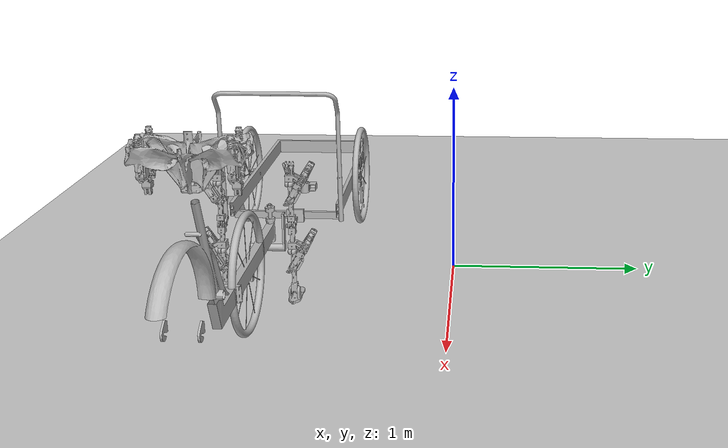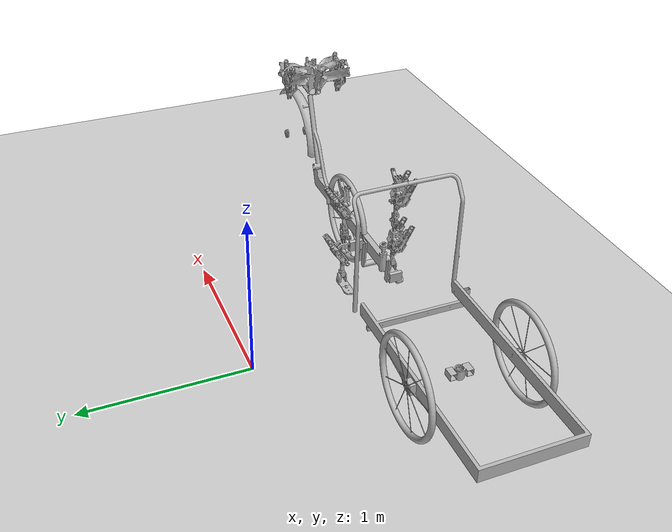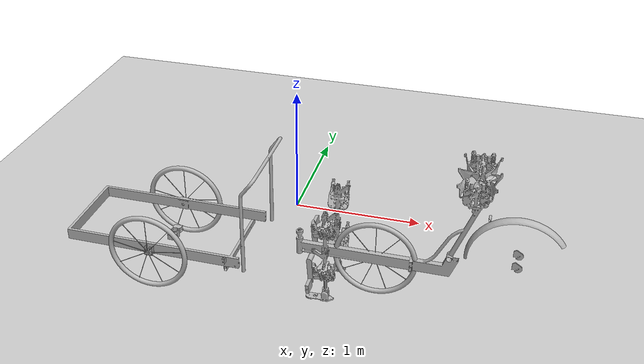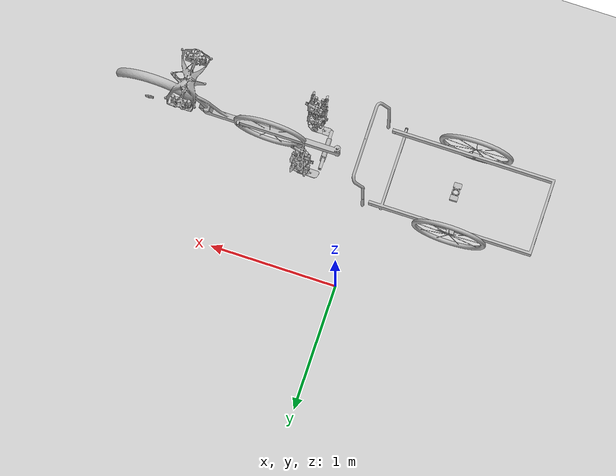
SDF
<sdf version="1.6">
 <world name="default">
  <light name="sun" type="directional">
   <pose>0 0 10 0 -0 0</pose>
   <diffuse>0.8 0.8 0.8 1</diffuse>
   <specular>0.2 0.2 0.2 1</specular>
   <attenuation>
    <range>1000</range>
    <constant>0.9</constant>
    <linear>0.01</linear>
    <quadratic>0.001</quadratic>
   </attenuation>
   <direction>-0.5 0.1 -0.9</direction>
  </light>
  <model name="ground_plane">
   <static>1</static>
   <link name="link">
    <collision name="collision">
     <geometry><plane><normal>0 0 1</normal><size>100 100</size></plane></geometry>
     <surface>
      <contact><collide_bitmask>65535</collide_bitmask></contact>
      <friction><ode><mu>100</mu><mu2>50</mu2></ode></friction>
     </surface>
    </collision>
    <visual name="visual">
     <cast_shadows>0</cast_shadows>
     <geometry><plane><normal>0 0 1</normal><size>100 100</size></plane></geometry>
     <material>
      <script><uri>file://media/materials/scripts/gazebo.material</uri><name>Gazebo/Grey</name></script>
     </material>
    </visual>
   </link>
  </model>
  <gravity>0 0 -9.81</gravity>
  <magnetic_field>6e-06 2.3e-05 -4.2e-05</magnetic_field>
  <atmosphere type="adiabatic"/>
  <physics name="default_physics" default="0" type="ode">
   <max_step_size>0.001</max_step_size>
   <real_time_factor>1</real_time_factor>
   <real_time_update_rate>1000</real_time_update_rate>
  </physics>
  <scene><ambient>0.4 0.4 0.4 1</ambient><background>0.7 0.7 0.7 1</background><shadows>1</shadows></scene>
  <audio><device>default</device></audio>
  <spherical_coordinates>
   <surface_model>EARTH_WGS84</surface_model>
   <latitude_deg>0</latitude_deg>
   <longitude_deg>0</longitude_deg>
   <elevation>0</elevation>
   <heading_deg>0</heading_deg>
  </spherical_coordinates>
  <model name="rikshaw">
   <link name="bike">
    <inertial>
     <mass>21.8195</mass>
     <inertia>
      <ixx>5.88648</ixx>
      <ixy>0.052466</ixy>
      <ixz>0.146054</ixz>
      <iyy>9.14545</iyy>
      <iyz>-2.30931</iyz>
      <izz>3.8627</izz>
     </inertia>
    </inertial>
    <collision name="bike_collision">
     <geometry>
      <mesh><uri>model://rikshaw/meshes/collisions/bike.stl</uri><scale>0.001 0.001 0.001</scale></mesh>
     </geometry>
    </collision>
    <visual name="bike_visual">
     <geometry>
      <mesh><uri>model://rikshaw/meshes/visuals/bike.stl</uri><scale>0.001 0.001 0.001</scale></mesh>
     </geometry>
    </visual>
   </link>
   <link name="front_part">
    <pose>-0.71639 0.010389 0.216438 0 -0 0</pose>
    <inertial>
     <mass>16.8107</mass>
     <inertia>
      <ixx>3.20923</ixx>
      <ixy>0.181136</ixy>
      <ixz>-0.00672308</ixz>
      <iyy>14.663</iyy>
      <iyz>1.24197</iyz>
      <izz>13.9129</izz>
     </inertia>
    </inertial>
    <collision name="front_part_collision">
     <geometry>
      <mesh><uri>model://rikshaw/meshes/collisions/front_part.stl</uri><scale>0.001 0.001 0.001</scale></mesh>
     </geometry>
    </collision>
    <visual name="front_part_visual">
     <geometry>
      <mesh><uri>model://rikshaw/meshes/visuals/front_part.stl</uri><scale>0.001 0.001 0.001</scale></mesh>
     </geometry>
    </visual>
   </link>
   <link name="left_wheel">
    <pose>-0.998426 -0.35 0.045667 0 -0 0</pose>
    <inertial>
     <mass>13.3402</mass>
     <inertia>
      <ixx>2.17117</ixx>
      <ixy>-4.66171</ixy>
      <ixz>0.213222</ixz>
      <iyy>14.3423</iyy>
      <iyz>0.608246</iyz>
      <izz>15.4415</izz>
     </inertia>
    </inertial>
    <collision name="left_wheel_collision">
     <geometry>
      <mesh><uri>model://rikshaw/meshes/collisions/left_wheel.stl</uri><scale>0.001 0.001 0.001</scale></mesh>
     </geometry>
    </collision>
    <visual name="left_wheel_visual">
     <geometry>
      <mesh><uri>model://rikshaw/meshes/visuals/left_wheel.stl</uri><scale>0.001 0.001 0.001</scale></mesh>
     </geometry>
    </visual>
   </link>
   <link name="right_wheel">
    <pose>-0.998426 0.342 0.045667 0 -0 0</pose>
    <inertial>
     <mass>13.3402</mass>
     <inertia>
      <ixx>2.09732</ixx>
      <ixy>4.55516</ixy>
      <ixz>-0.208348</ixz>
      <iyy>14.3423</iyy>
      <iyz>0.608246</iyz>
      <izz>15.3677</izz>
     </inertia>
    </inertial>
    <collision name="right_wheel_collision">
     <geometry>
      <mesh><uri>model://rikshaw/meshes/collisions/right_wheel.stl</uri><scale>0.001 0.001 0.001</scale></mesh>
     </geometry>
    </collision>
    <visual name="right_wheel_visual">
     <geometry>
      <mesh><uri>model://rikshaw/meshes/visuals/right_wheel.stl</uri><scale>0.001 0.001 0.001</scale></mesh>
     </geometry>
    </visual>
   </link>
   <link name="pedal_right">
    <pose>0.077867 0.147989 0.171875 0 -0 0</pose>
    <inertial>
     <mass>0.946003</mass>
     <inertia>
      <ixx>0.049585</ixx>
      <ixy>-0.0109012</ixy>
      <ixz>-0.0240622</ixz>
      <iyy>0.0340966</iyy>
      <iyz>-0.0126331</iyz>
      <izz>0.0270606</izz>
     </inertia>
    </inertial>
    <collision name="pedal_right_collision">
     <geometry>
      <mesh><uri>model://rikshaw/meshes/collisions/pedal_right.stl</uri><scale>0.001 0.001 0.001</scale></mesh>
     </geometry>
    </collision>
    <visual name="pedal_right_visual">
     <geometry>
      <mesh><uri>model://rikshaw/meshes/visuals/pedal_right.stl</uri><scale>0.001 0.001 0.001</scale></mesh>
     </geometry>
    </visual>
   </link>
   <link name="kurbel">
    <pose>0.092229 0.000132 0.004277 0 -0 0</pose>
    <inertial>
     <mass>2.78327</mass>
     <inertia>
      <ixx>0.0332153</ixx>
      <ixy>0.00102181</ixy>
      <ixz>-0.0129372</ixz>
      <iyy>0.0415869</iyy>
      <iyz>0.000301436</iyz>
      <izz>0.0397311</izz>
     </inertia>
    </inertial>
    <collision name="kurbel_collision">
     <geometry>
      <mesh><uri>model://rikshaw/meshes/collisions/kurbel.stl</uri><scale>0.001 0.001 0.001</scale></mesh>
     </geometry>
    </collision>
    <visual name="kurbel_visual">
     <geometry>
      <mesh><uri>model://rikshaw/meshes/visuals/kurbel.stl</uri><scale>0.001 0.001 0.001</scale></mesh>
     </geometry>
    </visual>
   </link>
   <link name="pedal_left">
    <pose>0.107381 -0.149245 -0.165378 0 -0 0</pose>
    <inertial>
     <mass>0.946003</mass>
     <inertia>
      <ixx>0.0478651</ixx>
      <ixy>0.0151607</ixy>
      <ixz>-0.023349</ixz>
      <iyy>0.037196</iyy>
      <iyz>0.0168274</iyz>
      <izz>0.0325859</izz>
     </inertia>
    </inertial>
    <collision name="pedal_left_collision">
     <geometry>
      <mesh><uri>model://rikshaw/meshes/collisions/pedal_left.stl</uri><scale>0.001 0.001 0.001</scale></mesh>
     </geometry>
    </collision>
    <visual name="pedal_left_visual">
     <geometry>
      <mesh><uri>model://rikshaw/meshes/visuals/pedal_left.stl</uri><scale>0.001 0.001 0.001</scale></mesh>
     </geometry>
    </visual>
   </link>
   <link name="foot_left">
    <pose>0.175834 -0.188522 -0.206484 0 -0 0</pose>
    <inertial>
     <mass>0.729387</mass>
     <inertia>
      <ixx>0.0540703</ixx>
      <ixy>0.0325151</ixy>
      <ixz>-0.0267603</ixz>
      <iyy>0.0691055</iyy>
      <iyz>0.033572</iyz>
      <izz>0.0673689</izz>
     </inertia>
    </inertial>
    <collision name="foot_left_collision">
     <geometry>
      <mesh><uri>model://rikshaw/meshes/collisions/foot_left.stl</uri><scale>0.001 0.001 0.001</scale></mesh>
     </geometry>
    </collision>
    <visual name="foot_left_visual">
     <geometry>
      <mesh><uri>model://rikshaw/meshes/visuals/foot_left.stl</uri><scale>0.001 0.001 0.001</scale></mesh>
     </geometry>
    </visual>
   </link>
   <link name="foot_left_tip">
    <pose>0.135237 -0.187356 -0.212157 0 -0 0</pose>
    <inertial>
     <mass>0.27794</mass>
     <inertia>
      <ixx>0.0223508</ixx>
      <ixy>0.00705069</ixy>
      <ixz>-0.0110471</ixz>
      <iyy>0.0177083</iyy>
      <iyz>0.00796501</iyz>
      <izz>0.0150315</izz>
     </inertia>
    </inertial>
    <collision name="foot_left_tip_collision">
     <geometry>
      <mesh><uri>model://rikshaw/meshes/collisions/foot_left_tip.stl</uri><scale>0.001 0.001 0.001</scale></mesh>
     </geometry>
    </collision>
    <visual name="foot_left_tip_visual">
     <geometry>
      <mesh><uri>model://rikshaw/meshes/visuals/foot_left_tip.stl</uri><scale>0.001 0.001 0.001</scale></mesh>
     </geometry>
    </visual>
   </link>
   <link name="foot_right">
    <pose>0.177557 0.159628 -0.20488 0 -0 0</pose>
    <inertial>
     <mass>0.729389</mass>
     <inertia>
      <ixx>0.0466286</ixx>
      <ixy>-0.0277371</ixy>
      <ixz>0.0225894</ixz>
      <iyy>0.0699977</iyy>
      <iyz>0.0339399</iyz>
      <izz>0.0608029</izz>
     </inertia>
    </inertial>
    <collision name="foot_right_collision">
     <geometry>
      <mesh><uri>model://rikshaw/meshes/collisions/foot_right.stl</uri><scale>0.001 0.001 0.001</scale></mesh>
     </geometry>
    </collision>
    <visual name="foot_right_visual">
     <geometry>
      <mesh><uri>model://rikshaw/meshes/visuals/foot_right.stl</uri><scale>0.001 0.001 0.001</scale></mesh>
     </geometry>
    </visual>
   </link>
   <link name="foot_right_tip">
    <pose>0.137476 0.157961 -0.21111 0 -0 0</pose>
    <inertial>
     <mass>0.277951</mass>
     <inertia>
      <ixx>0.019407</ixx>
      <ixy>-0.00604428</ixy>
      <ixz>0.00926828</ixz>
      <iyy>0.0177555</iyy>
      <iyz>0.00805844</iyz>
      <izz>0.0123806</izz>
     </inertia>
    </inertial>
    <collision name="foot_right_tip_collision">
     <geometry>
      <mesh><uri>model://rikshaw/meshes/collisions/foot_right_tip.stl</uri><scale>0.001 0.001 0.001</scale></mesh>
     </geometry>
    </collision>
    <visual name="foot_right_tip_visual">
     <geometry>
      <mesh><uri>model://rikshaw/meshes/visuals/foot_right_tip.stl</uri><scale>0.001 0.001 0.001</scale></mesh>
     </geometry>
    </visual>
   </link>
   <link name="thigh_right">
    <pose>0.22881 0.183836 0.377897 0 -0 0</pose>
    <inertial>
     <mass>5.56353</mass>
     <inertia>
      <ixx>1.01078</ixx>
      <ixy>-0.233948</ixy>
      <ixz>-0.389556</ixz>
      <iyy>1.11693</iyy>
      <iyz>-0.481833</iyz>
      <izz>0.491424</izz>
     </inertia>
    </inertial>
    <collision name="thigh_right_collision">
     <geometry>
      <mesh><uri>model://rikshaw/meshes/collisions/thigh_right.stl</uri><scale>0.001 0.001 0.001</scale></mesh>
     </geometry>
    </collision>
    <visual name="thigh_right_visual">
     <geometry>
      <mesh><uri>model://rikshaw/meshes/visuals/thigh_right.stl</uri><scale>0.001 0.001 0.001</scale></mesh>
     </geometry>
    </visual>
   </link>
   <link name="thigh_left">
    <pose>0.229281 -0.212628 0.377907 0 -0 0</pose>
    <inertial>
     <mass>5.56359</mass>
     <inertia>
      <ixx>1.07435</ixx>
      <ixy>0.270612</ixy>
      <ixz>0.450093</ixz>
      <iyy>1.11818</iyy>
      <iyz>-0.483107</iyz>
      <izz>0.556129</izz>
     </inertia>
    </inertial>
    <collision name="thigh_left_collision">
     <geometry>
      <mesh><uri>model://rikshaw/meshes/collisions/thigh_left.stl</uri><scale>0.001 0.001 0.001</scale></mesh>
     </geometry>
    </collision>
    <visual name="thigh_left_visual">
     <geometry>
      <mesh><uri>model://rikshaw/meshes/visuals/thigh_left.stl</uri><scale>0.001 0.001 0.001</scale></mesh>
     </geometry>
    </visual>
   </link>
   <link name="leg_right">
    <pose>0.232912 0.183265 0.029973 0 -0 0</pose>
    <inertial>
     <mass>5.74152</mass>
     <inertia>
      <ixx>0.23782</ixx>
      <ixy>-0.245518</ixy>
      <ixz>-0.0349696</ixz>
      <iyy>0.359399</iyy>
      <iyz>-0.0375907</iyz>
      <izz>0.516755</izz>
     </inertia>
    </inertial>
    <collision name="leg_right_collision">
     <geometry>
      <mesh><uri>model://rikshaw/meshes/collisions/leg_right.stl</uri><scale>0.001 0.001 0.001</scale></mesh>
     </geometry>
    </collision>
    <visual name="leg_right_visual">
     <geometry>
      <mesh><uri>model://rikshaw/meshes/visuals/leg_right.stl</uri><scale>0.001 0.001 0.001</scale></mesh>
     </geometry>
    </visual>
   </link>
   <link name="leg_left">
    <pose>0.232044 -0.211691 0.030085 0 -0 0</pose>
    <inertial>
     <mass>5.74262</mass>
     <inertia>
      <ixx>0.302437</ixx>
      <ixy>0.281999</ixy>
      <ixz>0.0400119</ixz>
      <iyy>0.357203</iyy>
      <iyz>-0.0381305</iyz>
      <izz>0.578943</izz>
     </inertia>
    </inertial>
    <collision name="leg_left_collision">
     <geometry>
      <mesh><uri>model://rikshaw/meshes/collisions/leg_left.stl</uri><scale>0.001 0.001 0.001</scale></mesh>
     </geometry>
    </collision>
    <visual name="leg_left_visual">
     <geometry>
      <mesh><uri>model://rikshaw/meshes/visuals/leg_left.stl</uri><scale>0.001 0.001 0.001</scale></mesh>
     </geometry>
    </visual>
   </link>
   <link name="wheel_back">
    <pose>0.536897 0.00355 0.049416 0 -0 0</pose>
    <inertial>
     <mass>13.3402</mass>
     <inertia>
      <ixx>0.541919</ixx>
      <ixy>-0.0254258</ixy>
      <ixz>-0.00234019</ixz>
      <iyy>4.8943</iyy>
      <iyz>-0.353931</iyz>
      <izz>4.35476</izz>
     </inertia>
    </inertial>
    <collision name="wheel_back_collision">
     <geometry>
      <mesh><uri>model://rikshaw/meshes/collisions/wheel_back.stl</uri><scale>0.001 0.001 0.001</scale></mesh>
     </geometry>
    </collision>
    <visual name="wheel_back_visual">
     <geometry>
      <mesh><uri>model://rikshaw/meshes/visuals/wheel_back.stl</uri><scale>0.001 0.001 0.001</scale></mesh>
     </geometry>
    </visual>
   </link>
   <joint name="joint_hip_left" type="revolute">
    <parent>bike</parent>
    <child>thigh_left</child>
    <pose>-0.004772 0.010556 0.111121 0 -0 0</pose>
    <axis>
     <xyz>0 -1 -0</xyz>
     <limit><lower>-3.14159</lower><upper>3.14159</upper></limit>
     <use_parent_model_frame>0</use_parent_model_frame>
     <dynamics><spring_reference>0</spring_reference><spring_stiffness>0</spring_stiffness></dynamics>
    </axis>
   </joint>
   <joint name="joint_pedal_right" type="revolute">
    <parent>kurbel</parent>
    <child>pedal_right</child>
    <pose>-4.2e-05 0.042 -6.6e-05 0 -0 0</pose>
    <axis>
     <xyz>-0 1 -0</xyz>
     <limit><lower>-3.14159</lower><upper>3.14159</upper></limit>
     <use_parent_model_frame>0</use_parent_model_frame>
     <dynamics><spring_reference>0</spring_reference><spring_stiffness>0</spring_stiffness></dynamics>
    </axis>
   </joint>
   <joint name="joint_pedal_left" type="revolute">
    <parent>kurbel</parent>
    <child>pedal_left</child>
    <pose>-5.3e-05 -0.042 5.8e-05 0 -0 0</pose>
    <axis>
     <xyz>0 -1 0</xyz>
     <limit><lower>-3.14159</lower><upper>3.14159</upper></limit>
     <use_parent_model_frame>0</use_parent_model_frame>
     <dynamics><spring_reference>0</spring_reference><spring_stiffness>0</spring_stiffness></dynamics>
    </axis>
   </joint>
   <joint name="joint_wheel_right" type="revolute">
    <parent>front_part</parent>
    <child>right_wheel</child>
    <pose>0 -0.004 0 0 -0 0</pose>
    <axis>
     <xyz>-0 1 0</xyz>
     <limit><lower>-3.14159</lower><upper>3.14159</upper></limit>
     <use_parent_model_frame>0</use_parent_model_frame>
     <dynamics><spring_reference>0</spring_reference><spring_stiffness>0</spring_stiffness></dynamics>
    </axis>
   </joint>
   <joint name="joint_wheel_back" type="revolute">
    <parent>bike</parent>
    <child>wheel_back</child>
    <pose>-0 -0.069 0 0 -0 0</pose>
    <axis>
     <xyz>0 -1 0</xyz>
     <limit><lower>-3.14159</lower><upper>3.14159</upper></limit>
     <use_parent_model_frame>0</use_parent_model_frame>
     <dynamics><spring_reference>0</spring_reference><spring_stiffness>0</spring_stiffness></dynamics>
    </axis>
   </joint>
   <joint name="joint_pedal" type="revolute">
    <parent>bike</parent>
    <child>kurbel</child>
    <pose>0.000278 -0.035132 -0.001009 0 -0 0</pose>
    <axis>
     <xyz>-0 1 -0</xyz>
     <limit><lower>-3.14159</lower><upper>3.14159</upper></limit>
     <use_parent_model_frame>0</use_parent_model_frame>
     <dynamics><spring_reference>0</spring_reference><spring_stiffness>0</spring_stiffness></dynamics>
    </axis>
   </joint>
   <joint name="spine_joint" type="revolute">
    <parent>bike</parent>
    <child>torso</child>
    <pose>0.020608 0.002662 -0.443886 0 -0 0</pose>
    <axis>
     <xyz>0.019536 0 -0.999809</xyz>
     <limit><lower>-0.523599</lower><upper>0.523599</upper></limit>
     <use_parent_model_frame>0</use_parent_model_frame>
     <dynamics><spring_reference>0</spring_reference><spring_stiffness>0</spring_stiffness></dynamics>
    </axis>
   </joint>
   <joint name="joint_wheel_left" type="revolute">
    <parent>front_part</parent>
    <child>left_wheel</child>
    <pose>0 0.046 0 0 -0 0</pose>
    <axis>
     <xyz>0 -1 -0</xyz>
     <limit><lower>-3.14159</lower><upper>3.14159</upper></limit>
     <use_parent_model_frame>0</use_parent_model_frame>
     <dynamics><spring_reference>0</spring_reference><spring_stiffness>0</spring_stiffness></dynamics>
    </axis>
   </joint>
   <joint name="joint_front" type="revolute">
    <parent>bike</parent>
    <child>front_part</child>
    <pose>-0.230035 -0.010388 -0.205271 0 -0 0</pose>
    <axis>
     <xyz>0 -0 1</xyz>
     <limit><lower>-0.523599</lower><upper>0.523599</upper></limit>
     <use_parent_model_frame>0</use_parent_model_frame>
     <dynamics><spring_reference>0</spring_reference><spring_stiffness>0</spring_stiffness></dynamics>
    </axis>
   </joint>
   <joint name="joint_knee_left" type="revolute">
    <parent>thigh_left</parent>
    <child>leg_left</child>
    <pose>0.008999 0.033669 0.150207 0 -0 0</pose>
    <axis>
     <xyz>0 -1 -0</xyz>
     <limit><lower>-3.14159</lower><upper>3.14159</upper></limit>
     <use_parent_model_frame>0</use_parent_model_frame>
     <dynamics><spring_reference>0</spring_reference><spring_stiffness>0</spring_stiffness></dynamics>
    </axis>
   </joint>
   <joint name="joint_hip_right" type="revolute">
    <parent>bike</parent>
    <child>thigh_right</child>
    <pose>-0.004301 -0.021908 0.111131 0 -0 0</pose>
    <axis>
     <xyz>0 -1 -0</xyz>
     <limit><lower>-3.14159</lower><upper>3.14159</upper></limit>
     <use_parent_model_frame>0</use_parent_model_frame>
     <dynamics><spring_reference>0</spring_reference><spring_stiffness>0</spring_stiffness></dynamics>
    </axis>
   </joint>
   <joint name="joint_knee_right" type="revolute">
    <parent>thigh_right</parent>
    <child>leg_right</child>
    <pose>0.007631 -0.013637 0.15031 0 -0 0</pose>
    <axis>
     <xyz>-0 1 0</xyz>
     <limit><lower>-3.14159</lower><upper>3.14159</upper></limit>
     <use_parent_model_frame>0</use_parent_model_frame>
     <dynamics><spring_reference>0</spring_reference><spring_stiffness>0</spring_stiffness></dynamics>
    </axis>
   </joint>
   <joint name="joint_foot_left" type="revolute">
    <parent>leg_left</parent>
    <child>foot_left</child>
    <pose>0.062029 0.024 0.037648 0 -0 0</pose>
    <axis>
     <xyz>0 1 0</xyz>
     <limit><lower>-3.14159</lower><upper>3.14159</upper></limit>
     <use_parent_model_frame>0</use_parent_model_frame>
     <dynamics><spring_reference>0</spring_reference><spring_stiffness>0</spring_stiffness></dynamics>
    </axis>
   </joint>
   <joint name="joint_foot_left_tip" type="fixed">
    <parent>foot_left</parent>
    <child>foot_left_tip</child>
    <pose>0.041041 -0.001166 0.005886 0 -0 0</pose>
   </joint>
   <joint name="joint_foot_right" type="revolute">
    <parent>leg_right</parent>
    <child>foot_right</child>
    <pose>0.062989 0.0235 0.036019 0 -0 0</pose>
    <axis>
     <xyz>-0 1 0</xyz>
     <limit><lower>-3.14159</lower><upper>3.14159</upper></limit>
     <use_parent_model_frame>0</use_parent_model_frame>
     <dynamics><spring_reference>0</spring_reference><spring_stiffness>0</spring_stiffness></dynamics>
    </axis>
   </joint>
   <joint name="joint_foot_right_tip" type="fixed">
    <parent>foot_right</parent>
    <child>foot_right_tip</child>
    <pose>0.041099 0.001167 0.005459 0 -0 0</pose>
   </joint>
   <plugin name="cardsflow_gazebo_plugin" filename="libcardsflow_gazebo_plugin.so"/>
   <pose>0.290128 -0.933628 0.245894 0 0.002442 2.6e-05</pose>
  </model>
 </world>
</sdf>
